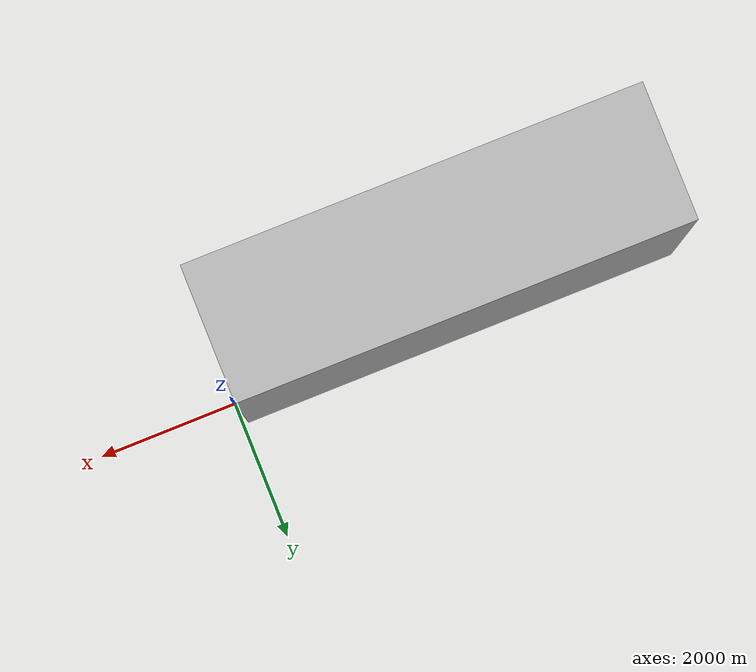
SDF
<?xml version="1.0" ?>
<sdf version="1.5">
  <model name="roughterrain_1000x1000">
    <static>true</static>
    <link name="link">
      <pose frame="">0 0 -0.25 -1.5708 1.5708 1.5708</pose>
      <collision name="collision">
        <geometry>
          <mesh>
            <uri>model://Part1/meshes/Part1.STL</uri>
            <scale>0.2 0.2 0.2</scale>
          </mesh>
        </geometry>
        <surface>
          <friction>
            <ode>
              <mu>300</mu>
              <mu2>150</mu2>
            </ode>
          </friction>
      </surface>
      </collision>
      <visual name="visual">
          <geometry>
             <mesh>
                <uri>model://Part1/meshes/Part1.STL</uri>
                <scale>0.2 0.2 0.2</scale>
             </mesh>
        </geometry>
      </visual>

    </link>
  </model>
</sdf>
